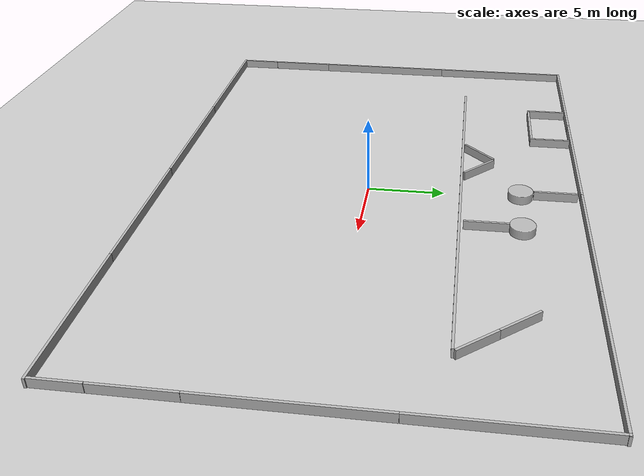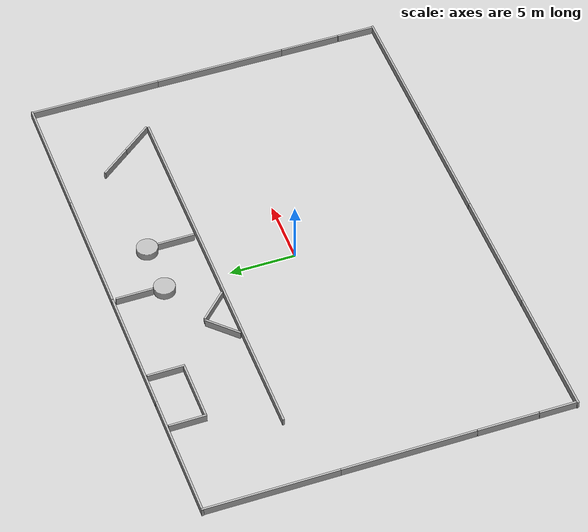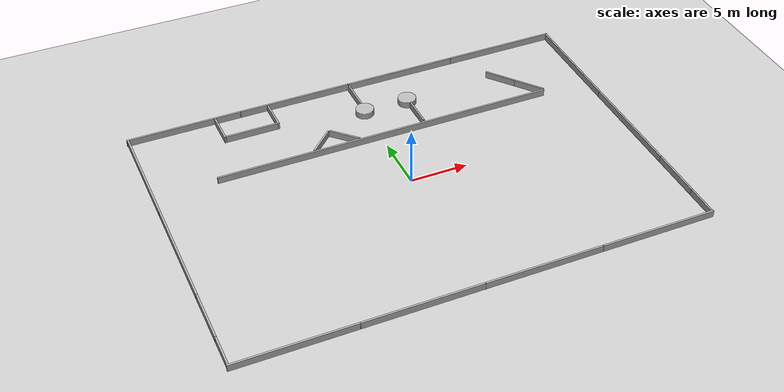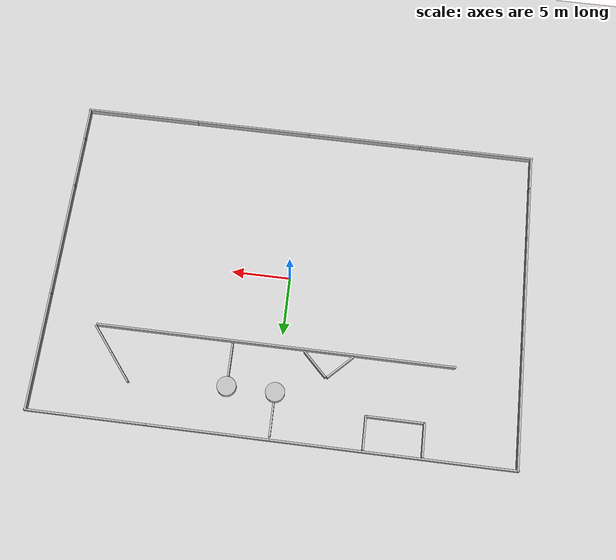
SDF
<sdf version="1.6">
 <world name="pp_playground">
  <scene>
   <shadows>0</shadows>
   <ambient>0.8 0.8 0.8 1</ambient>
   <background>1 1 1 1</background>
   <grid>0</grid>
   <origin_visual>0</origin_visual>
  </scene>
  <physics name="default_physics" default="0" type="ode">
   <max_step_size>0.001</max_step_size>
   <real_time_factor>1</real_time_factor>
   <real_time_update_rate>500</real_time_update_rate>
  </physics>
  <gravity>0 0 -9.8</gravity>
  <magnetic_field>6e-06 2.3e-05 -4.2e-05</magnetic_field>
  <atmosphere type="adiabatic"/>
  <audio><device>default</device></audio>
  <spherical_coordinates>
   <surface_model>EARTH_WGS84</surface_model>
   <latitude_deg>0</latitude_deg>
   <longitude_deg>0</longitude_deg>
   <elevation>0</elevation>
   <heading_deg>0</heading_deg>
  </spherical_coordinates>
  <model name="ground_plane">
   <static>1</static>
   <link name="link">
    <collision name="collision">
     <geometry><plane><normal>0 0 1</normal><size>50 50</size></plane></geometry>
     <surface><friction><ode><mu>100</mu><mu2>50</mu2></ode></friction></surface>
    </collision>
    <visual name="visual">
     <cast_shadows>0</cast_shadows>
     <geometry><plane><normal>0 0 1</normal><size>100 100</size></plane></geometry>
     <material>
      <script><name>Gazebo/Grey</name><uri>file://media/materials/scripts/gazebo.material</uri></script>
     </material>
    </visual>
    <velocity_decay><linear>0</linear><angular>0</angular></velocity_decay>
   </link>
  </model>
  <include><uri>model://path_planning_ground</uri></include>
 </world>
</sdf>

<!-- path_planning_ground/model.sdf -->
<sdf version="1.5">
 <model name='path_planning_ground'>
      <static>1</static>

      <link name='wall'>
        <pose frame=''>0.5 6.1 0 0 -0 0</pose>
        <collision name='wall_01'>
          <pose frame=''>-0 0 1.25 0 -0 0</pose>
          <geometry>
            <box>
              <size>30 0.15 0.6</size>
            </box>
          </geometry>
          <max_contacts>10</max_contacts>
          <surface>
            <contact>
              <ode/>
            </contact>
            <bounce/>
            <friction>
              <torsional>
                <ode/>
              </torsional>
              <ode/>
            </friction>
          </surface>
        </collision>

        <visual name='visual_wall'>
          <geometry>
            <mesh>
              <uri>model://path_planning_ground/meshes/concrete_barrier_30m.dae</uri>
            </mesh>
          </geometry>
        </visual>

        <self_collide>0</self_collide>
        <enable_wind>0</enable_wind>
        <kinematic>0</kinematic>
      </link>

      <link name='concrete_barrier_m_1'>
      <pose frame=''>14.689 7.315 0 0 -0 2.246</pose>
        <collision name='concrete_barrier_m_01'>
          <pose frame=''>-0 0 0.3 0 -0 0</pose>
          <geometry>
            <box>
              <size>2.8 0.15 0.6</size>
            </box>
          </geometry>
          <max_contacts>10</max_contacts>
          <surface>
            <contact>
              <ode/>
            </contact>
            <bounce/>
            <friction>
              <torsional>
                <ode/>
              </torsional>
              <ode/>
            </friction>
          </surface>
        </collision>
        <visual name='visual'>
          <geometry>
            <mesh>
              <uri>model://path_planning_ground/meshes/concrete_barrier_m.dae</uri>
            </mesh>
          </geometry>
        </visual>
        <self_collide>0</self_collide>
        <enable_wind>0</enable_wind>
        <kinematic>0</kinematic>
      </link>
      <link name='concrete_barrier_m_2'>
      <pose frame=''>12.94 9.5 0 0 -0 2.246</pose>
        <collision name='concrete_barrier_m_01'>
          <pose frame=''>-0 0 0.3 0 -0 0</pose>
          <geometry>
            <box>
              <size>2.8 0.15 0.6</size>
            </box>
          </geometry>
          <max_contacts>10</max_contacts>
          <surface>
            <contact>
              <ode/>
            </contact>
            <bounce/>
            <friction>
              <torsional>
                <ode/>
              </torsional>
              <ode/>
            </friction>
          </surface>
        </collision>
        <visual name='visual'>
          <geometry>
            <mesh>
              <uri>model://path_planning_ground/meshes/concrete_barrier_m.dae</uri>
            </mesh>
          </geometry>
        </visual>
        <self_collide>0</self_collide>
        <enable_wind>0</enable_wind>
        <kinematic>0</kinematic>
      </link>
      <link name='round_concrete_base_1'>
      <pose frame=''>4 9.95 0 0 -0 0</pose>
        <collision name='round_concrete_base_01'>
          <pose frame=''>-0 0 0.3 0 -0 0</pose>
          <geometry>
            <cylinder>
              <radius>0.8</radius>
              <length>0.6</length>
            </cylinder>
          </geometry>
          <max_contacts>10</max_contacts>
          <surface>
            <contact>
              <ode/>
            </contact>
            <bounce/>
            <friction>
              <torsional>
                <ode/>
              </torsional>
              <ode/>
            </friction>
          </surface>
        </collision>
        <visual name='visual'>
          <geometry>
            <mesh>
              <uri>model://path_planning_ground/meshes/round_concrete_base.dae</uri>
            </mesh>
          </geometry>
        </visual>
        <self_collide>0</self_collide>
        <enable_wind>0</enable_wind>
        <kinematic>0</kinematic>
      </link>
      <link name='concrete_barrier_m_3'>
      <pose frame=''>4 7.75 0 0 -0 1.57675</pose>
        <collision name='concrete_barrier_m_01'>
          <pose frame=''>-0 0 0.3 0 -0 0</pose>
          <geometry>
            <box>
              <size>2.8 0.15 0.6</size>
            </box>
          </geometry>
          <max_contacts>10</max_contacts>
          <surface>
            <contact>
              <ode/>
            </contact>
            <bounce/>
            <friction>
              <torsional>
                <ode/>
              </torsional>
              <ode/>
            </friction>
          </surface>
        </collision>
        <visual name='visual'>
          <geometry>
            <mesh>
              <uri>model://path_planning_ground/meshes/concrete_barrier_m.dae</uri>
            </mesh>
          </geometry>
        </visual>
        <self_collide>0</self_collide>
        <enable_wind>0</enable_wind>
        <kinematic>0</kinematic>
      </link>
      <link name='round_concrete_base_2'>
      <pose frame=''>0 9.95 0 0 -0 0</pose>
        <collision name='round_concrete_base_01'>
          <pose frame=''>-0 0 0.3 0 -0 0</pose>
          <geometry>
            <cylinder>
              <radius>0.8</radius>
              <length>0.6</length>
            </cylinder>
          </geometry>
          <max_contacts>10</max_contacts>
          <surface>
            <contact>
              <ode/>
            </contact>
            <bounce/>
            <friction>
              <torsional>
                <ode/>
              </torsional>
              <ode/>
            </friction>
          </surface>
        </collision>
        <visual name='visual'>
          <geometry>
            <mesh>
              <uri>model://path_planning_ground/meshes/round_concrete_base.dae</uri>
            </mesh>
          </geometry>
        </visual>
        <self_collide>0</self_collide>
        <enable_wind>0</enable_wind>
        <kinematic>0</kinematic>
      </link>
      <link name='concrete_barrier_m_4'>
      <pose frame=''>0 12.2 0 0 -0 1.57675</pose>
        <collision name='concrete_barrier_m_01'>
          <pose frame=''>-0 0 0.3 0 -0 0</pose>
          <geometry>
            <box>
              <size>2.8 0.15 0.6</size>
            </box>
          </geometry>
          <max_contacts>10</max_contacts>
          <surface>
            <contact>
              <ode/>
            </contact>
            <bounce/>
            <friction>
              <torsional>
                <ode/>
              </torsional>
              <ode/>
            </friction>
          </surface>
        </collision>
        <visual name='visual'>
          <geometry>
            <mesh>
              <uri>model://path_planning_ground/meshes/concrete_barrier_m.dae</uri>
            </mesh>
          </geometry>
        </visual>
        <self_collide>0</self_collide>
        <enable_wind>0</enable_wind>
        <kinematic>0</kinematic>
      </link>
      <link name='concrete_barrier_m_5'>
      <pose frame=''>-7.54 12.325 0 0 -0 1.57675</pose>
        <collision name='concrete_barrier_m_01'>
          <pose frame=''>-0 0 0.3 0 -0 0</pose>
          <geometry>
            <box>
              <size>2.8 0.15 0.6</size>
            </box>
          </geometry>
          <max_contacts>10</max_contacts>
          <surface>
            <contact>
              <ode/>
            </contact>
            <bounce/>
            <friction>
              <torsional>
                <ode/>
              </torsional>
              <ode/>
            </friction>
          </surface>
        </collision>
        <visual name='visual'>
          <geometry>
            <mesh>
              <uri>model://path_planning_ground/meshes/concrete_barrier_m.dae</uri>
            </mesh>
          </geometry>
        </visual>
        <self_collide>0</self_collide>
        <enable_wind>0</enable_wind>
        <kinematic>0</kinematic>
      </link>
      <link name='concrete_barrier_l_7'>
        <pose frame=''>-9.91 11 0 0 -0 0</pose>
        <collision name='concrete_barrier_l_01'>
          <pose frame=''>-0 0 0.3 0 -0 0</pose>
          <geometry>
            <box>
              <size>4.6 0.15 0.6</size>
            </box>
          </geometry>
          <max_contacts>10</max_contacts>
          <surface>
            <contact>
              <ode/>
            </contact>
            <bounce/>
            <friction>
              <torsional>
                <ode/>
              </torsional>
              <ode/>
            </friction>
          </surface>
        </collision>
        <visual name='visual'>
          <geometry>
            <mesh>
              <uri>model://path_planning_ground/meshes/concrete_barrier_l.dae</uri>
            </mesh>
          </geometry>
        </visual>
        <self_collide>0</self_collide>
        <enable_wind>0</enable_wind>
        <kinematic>0</kinematic>
      </link>
      <link name='concrete_barrier_m_6'>
      <pose frame=''>-12.3 12.325 0 0 -0 1.57675</pose>
        <collision name='concrete_barrier_m_01'>
          <pose frame=''>-0 0 0.3 0 -0 0</pose>
          <geometry>
            <box>
              <size>2.8 0.15 0.6</size>
            </box>
          </geometry>
          <max_contacts>10</max_contacts>
          <surface>
            <contact>
              <ode/>
            </contact>
            <bounce/>
            <friction>
              <torsional>
                <ode/>
              </torsional>
              <ode/>
            </friction>
          </surface>
        </collision>
        <visual name='visual'>
          <geometry>
            <mesh>
              <uri>model://path_planning_ground/meshes/concrete_barrier_m.dae</uri>
            </mesh>
          </geometry>
        </visual>
        <self_collide>0</self_collide>
        <enable_wind>0</enable_wind>
        <kinematic>0</kinematic>
      </link>
      <link name='concrete_barrier_m_7'>
      <pose frame=''>-2.95 7.25 0 0 0 -0.7854</pose>
        <collision name='concrete_barrier_m_01'>
          <pose frame=''>-0 0 0.3 0 -0 0</pose>
          <geometry>
            <box>
              <size>2.8 0.15 0.6</size>
            </box>
          </geometry>
          <max_contacts>10</max_contacts>
          <surface>
            <contact>
              <ode/>
            </contact>
            <bounce/>
            <friction>
              <torsional>
                <ode/>
              </torsional>
              <ode/>
            </friction>
          </surface>
        </collision>
        <visual name='visual'>
          <geometry>
            <mesh>
              <uri>model://path_planning_ground/meshes/concrete_barrier_m.dae</uri>
            </mesh>
          </geometry>
        </visual>
        <self_collide>0</self_collide>
        <enable_wind>0</enable_wind>
        <kinematic>0</kinematic>
      </link>
      <link name='concrete_barrier_m_8'>
      <pose frame=''>-5.05 7.25 0 0 -0 0.7854</pose>
        <collision name='concrete_barrier_m_01'>
          <pose frame=''>-0 0 0.3 0 -0 0</pose>
          <geometry>
            <box>
              <size>2.8 0.15 0.6</size>
            </box>
          </geometry>
          <max_contacts>10</max_contacts>
          <surface>
            <contact>
              <ode/>
            </contact>
            <bounce/>
            <friction>
              <torsional>
                <ode/>
              </torsional>
              <ode/>
            </friction>
          </surface>
        </collision>
        <visual name='visual'>
          <geometry>
            <mesh>
              <uri>model://path_planning_ground/meshes/concrete_barrier_m.dae</uri>
            </mesh>
          </geometry>
        </visual>
        <self_collide>0</self_collide>
        <enable_wind>0</enable_wind>
        <kinematic>0</kinematic>
      </link>

    <!-- side -->
    <link name='concrete_barrier_xl_1'>
       <pose>19.9 8.92 0.0 0 0 1.5708</pose>
        <collision name='concrete_barrier_xl_01'>
          <pose frame=''>-0 0 0.3 0 -0 0</pose>
          <geometry>
            <box>
              <size>10 0.15 0.6</size>
            </box>
          </geometry>
          <max_contacts>10</max_contacts>
          <surface>
            <contact>
              <ode/>
            </contact>
            <bounce/>
            <friction>
              <torsional>
                <ode/>
              </torsional>
              <ode/>
            </friction>
          </surface>
        </collision>
        <visual name='visual'>
          <geometry>
            <mesh>
              <uri>model://path_planning_ground/meshes/concrete_barrier_xl.dae</uri>
            </mesh>
          </geometry>
        </visual>
        <self_collide>0</self_collide>
        <enable_wind>0</enable_wind>
        <kinematic>0</kinematic>
      </link>

     <link name='concrete_barrier_xl_2'>
       <pose>19.9 -1.09 0.0 0 0 1.5708</pose>
        <collision name='concrete_barrier_xl_02'>
          <pose frame=''>-0 0 0.3 0 -0 0</pose>
          <geometry>
            <box>
              <size>10 0.15 0.6</size>
            </box>
          </geometry>
          <max_contacts>10</max_contacts>
          <surface>
            <contact>
              <ode/>
            </contact>
            <bounce/>
            <friction>
              <torsional>
                <ode/>
              </torsional>
              <ode/>
            </friction>
          </surface>
        </collision>
        <visual name='visual'>
          <geometry>
            <mesh>
              <uri>model://path_planning_ground/meshes/concrete_barrier_xl.dae</uri>
            </mesh>
          </geometry>
        </visual>
        <self_collide>0</self_collide>
        <enable_wind>0</enable_wind>
        <kinematic>0</kinematic>
      </link>

    <link name='concrete_barrier_l_10'>
       <pose>19.9 -8.4 0.0 0 0 1.5708</pose>
        <collision name='concrete_barrier_l_10'>
          <pose frame=''>-0 0 0.3 0 -0 0</pose>
          <geometry>
            <box>
              <size>4.6 0.15 0.6</size>
            </box>
          </geometry>
          <max_contacts>10</max_contacts>
          <surface>
            <contact>
              <ode/>
            </contact>
            <bounce/>
            <friction>
              <torsional>
                <ode/>
              </torsional>
              <ode/>
            </friction>
          </surface>
        </collision>
        <visual name='visual'>
          <geometry>
            <mesh>
              <uri>model://path_planning_ground/meshes/concrete_barrier_l.dae</uri>
            </mesh>
          </geometry>
        </visual>
        <self_collide>0</self_collide>
        <enable_wind>0</enable_wind>
        <kinematic>0</kinematic>
      </link>

    <link name='concrete_barrier_m_9'>
      <pose>19.9 -12.12 0.0 0 0 1.5708</pose>se>
        <collision name='concrete_barrier_m_09'>
          <pose frame=''>-0 0 0.3 0 -0 0</pose>
          <geometry>
            <box>
              <size>2.8 0.15 0.6</size>
            </box>
          </geometry>
          <max_contacts>10</max_contacts>
          <surface>
            <contact>
              <ode/>
            </contact>
            <bounce/>
            <friction>
              <torsional>
                <ode/>
              </torsional>
              <ode/>
            </friction>
          </surface>
        </collision>
        <visual name='visual'>
          <geometry>
            <mesh>
              <uri>model://path_planning_ground/meshes/concrete_barrier_m.dae</uri>
            </mesh>
          </geometry>
        </visual>
        <self_collide>0</self_collide>
        <enable_wind>0</enable_wind>
        <kinematic>0</kinematic>
      </link>

    <!-- side -->
    <link name='concrete_barrier_xl_3'>
      <pose>-19.9 8.92 0.0 0 0 1.5708</pose>
        <collision name='concrete_barrier_xl_03'>
          <pose frame=''>-0 0 0.3 0 -0 0</pose>
          <geometry>
            <box>
              <size>10 0.15 0.6</size>
            </box>
          </geometry>
          <max_contacts>10</max_contacts>
          <surface>
            <contact>
              <ode/>
            </contact>
            <bounce/>
            <friction>
              <torsional>
                <ode/>
              </torsional>
              <ode/>
            </friction>
          </surface>
        </collision>
        <visual name='visual'>
          <geometry>
            <mesh>
              <uri>model://path_planning_ground/meshes/concrete_barrier_xl.dae</uri>
            </mesh>
          </geometry>
        </visual>
        <self_collide>0</self_collide>
        <enable_wind>0</enable_wind>
        <kinematic>0</kinematic>
      </link>

     <link name='concrete_barrier_xl_4'>
       <pose>-19.9 -1.09 0.0 0 0 1.5708</pose>
        <collision name='concrete_barrier_xl_04'>
          <pose frame=''>-0 0 0.3 0 -0 0</pose>
          <geometry>
            <box>
              <size>10 0.15 0.6</size>
            </box>
          </geometry>
          <max_contacts>10</max_contacts>
          <surface>
            <contact>
              <ode/>
            </contact>
            <bounce/>
            <friction>
              <torsional>
                <ode/>
              </torsional>
              <ode/>
            </friction>
          </surface>
        </collision>
        <visual name='visual'>
          <geometry>
            <mesh>
              <uri>model://path_planning_ground/meshes/concrete_barrier_xl.dae</uri>
            </mesh>
          </geometry>
        </visual>
        <self_collide>0</self_collide>
        <enable_wind>0</enable_wind>
        <kinematic>0</kinematic>
      </link>

    <link name='concrete_barrier_l_11'>
       <pose>-19.9 -8.4 0.0 0 0 1.5708</pose>
        <collision name='concrete_barrier_l_11'>
          <pose frame=''>-0 0 0.3 0 -0 0</pose>
          <geometry>
            <box>
              <size>4.6 0.15 0.6</size>
            </box>
          </geometry>
          <max_contacts>10</max_contacts>
          <surface>
            <contact>
              <ode/>
            </contact>
            <bounce/>
            <friction>
              <torsional>
                <ode/>
              </torsional>
              <ode/>
            </friction>
          </surface>
        </collision>
        <visual name='visual'>
          <geometry>
            <mesh>
              <uri>model://path_planning_ground/meshes/concrete_barrier_l.dae</uri>
            </mesh>
          </geometry>
        </visual>
        <self_collide>0</self_collide>
        <enable_wind>0</enable_wind>
        <kinematic>0</kinematic>
      </link>

    <link name='concrete_barrier_m_10'>
      <pose>-19.9 -12.12 0.0 0 0 1.5708</pose>se>
        <collision name='concrete_barrier_m_10'>
          <pose frame=''>-0 0 0.3 0 -0 0</pose>
          <geometry>
            <box>
              <size>2.8 0.15 0.6</size>
            </box>
          </geometry>
          <max_contacts>10</max_contacts>
          <surface>
            <contact>
              <ode/>
            </contact>
            <bounce/>
            <friction>
              <torsional>
                <ode/>
              </torsional>
              <ode/>
            </friction>
          </surface>
        </collision>
        <visual name='visual'>
          <geometry>
            <mesh>
              <uri>model://path_planning_ground/meshes/concrete_barrier_m.dae</uri>
            </mesh>
          </geometry>
        </visual>
        <self_collide>0</self_collide>
        <enable_wind>0</enable_wind>
        <kinematic>0</kinematic>
      </link>

    <!-- side -->
     <link name='concrete_barrier_xl_5'>
       <pose>15.02 -13.6 0.0 0 0 0</pose>
        <collision name='concrete_barrier_xl_05'>
          <pose frame=''>-0 0 0.3 0 -0 0</pose>
          <geometry>
            <box>
              <size>10 0.15 0.6</size>
            </box>
          </geometry>
          <max_contacts>10</max_contacts>
          <surface>
            <contact>
              <ode/>
            </contact>
            <bounce/>
            <friction>
              <torsional>
                <ode/>
              </torsional>
              <ode/>
            </friction>
          </surface>
        </collision>
        <visual name='visual'>
          <geometry>
            <mesh>
              <uri>model://path_planning_ground/meshes/concrete_barrier_xl.dae</uri>
            </mesh>
          </geometry>
        </visual>
        <self_collide>0</self_collide>
        <enable_wind>0</enable_wind>
        <kinematic>0</kinematic>
      </link>

     <link name='concrete_barrier_xl_6'>
       <pose>5.01 -13.6 0.0 0 0 0</pose>
        <collision name='concrete_barrier_xl_06'>
          <pose frame=''>-0 0 0.3 0 -0 0</pose>
          <geometry>
            <box>
              <size>10 0.15 0.6</size>
            </box>
          </geometry>
          <max_contacts>10</max_contacts>
          <surface>
            <contact>
              <ode/>
            </contact>
            <bounce/>
            <friction>
              <torsional>
                <ode/>
              </torsional>
              <ode/>
            </friction>
          </surface>
        </collision>
        <visual name='visual'>
          <geometry>
            <mesh>
              <uri>model://path_planning_ground/meshes/concrete_barrier_xl.dae</uri>
            </mesh>
          </geometry>
        </visual>
        <self_collide>0</self_collide>
        <enable_wind>0</enable_wind>
        <kinematic>0</kinematic>
      </link>

    <link name='concrete_barrier_xl_7'>
       <pose>-5.01 -13.6 0.0 0 0 0</pose>
        <collision name='concrete_barrier_xl_07'>
          <pose frame=''>-0 0 0.3 0 -0 0</pose>
          <geometry>
            <box>
              <size>10 0.15 0.6</size>
            </box>
          </geometry>
          <max_contacts>10</max_contacts>
          <surface>
            <contact>
              <ode/>
            </contact>
            <bounce/>
            <friction>
              <torsional>
                <ode/>
              </torsional>
              <ode/>
            </friction>
          </surface>
        </collision>
        <visual name='visual'>
          <geometry>
            <mesh>
              <uri>model://path_planning_ground/meshes/concrete_barrier_xl.dae</uri>
            </mesh>
          </geometry>
        </visual>
        <self_collide>0</self_collide>
        <enable_wind>0</enable_wind>
        <kinematic>0</kinematic>
      </link>

    <link name='concrete_barrier_xl_8'>
       <pose>-15.02 -13.6 0.0 0 0 0</pose>
        <collision name='concrete_barrier_xl_08'>
          <pose frame=''>-0 0 0.3 0 -0 0</pose>
          <geometry>
            <box>
              <size>10 0.15 0.6</size>
            </box>
          </geometry>
          <max_contacts>10</max_contacts>
          <surface>
            <contact>
              <ode/>
            </contact>
            <bounce/>
            <friction>
              <torsional>
                <ode/>
              </torsional>
              <ode/>
            </friction>
          </surface>
        </collision>
        <visual name='visual'>
          <geometry>
            <mesh>
              <uri>model://path_planning_ground/meshes/concrete_barrier_xl.dae</uri>
            </mesh>
          </geometry>
        </visual>
        <self_collide>0</self_collide>
        <enable_wind>0</enable_wind>
        <kinematic>0</kinematic>
      </link>

  <!-- side -->
     <link name='concrete_barrier_xl_09'>
       <pose>15.02 13.85 0.0 0 0 0</pose>
        <collision name='concrete_barrier_xl_09'>
          <pose frame=''>-0 0 0.3 0 -0 0</pose>
          <geometry>
            <box>
              <size>10 0.15 0.6</size>
            </box>
          </geometry>
          <max_contacts>10</max_contacts>
          <surface>
            <contact>
              <ode/>
            </contact>
            <bounce/>
            <friction>
              <torsional>
                <ode/>
              </torsional>
              <ode/>
            </friction>
          </surface>
        </collision>
        <visual name='visual'>
          <geometry>
            <mesh>
              <uri>model://path_planning_ground/meshes/concrete_barrier_xl.dae</uri>
            </mesh>
          </geometry>
        </visual>
        <self_collide>0</self_collide>
        <enable_wind>0</enable_wind>
        <kinematic>0</kinematic>
      </link>

     <link name='concrete_barrier_xl_10'>
       <pose>5.01 13.85 0.0 0 0 0</pose>
        <collision name='concrete_barrier_xl_10'>
          <pose frame=''>-0 0 0.3 0 -0 0</pose>
          <geometry>
            <box>
              <size>10 0.15 0.6</size>
            </box>
          </geometry>
          <max_contacts>10</max_contacts>
          <surface>
            <contact>
              <ode/>
            </contact>
            <bounce/>
            <friction>
              <torsional>
                <ode/>
              </torsional>
              <ode/>
            </friction>
          </surface>
        </collision>
        <visual name='visual'>
          <geometry>
            <mesh>
              <uri>model://path_planning_ground/meshes/concrete_barrier_xl.dae</uri>
            </mesh>
          </geometry>
        </visual>
        <self_collide>0</self_collide>
        <enable_wind>0</enable_wind>
        <kinematic>0</kinematic>
      </link>

    <link name='concrete_barrier_xl_11'>
       <pose>-5.01 13.85 0.0 0 0 0</pose>
        <collision name='concrete_barrier_xl_11'>
          <pose frame=''>-0 0 0.3 0 -0 0</pose>
          <geometry>
            <box>
              <size>10 0.15 0.6</size>
            </box>
          </geometry>
          <max_contacts>10</max_contacts>
          <surface>
            <contact>
              <ode/>
            </contact>
            <bounce/>
            <friction>
              <torsional>
                <ode/>
              </torsional>
              <ode/>
            </friction>
          </surface>
        </collision>
        <visual name='visual'>
          <geometry>
            <mesh>
              <uri>model://path_planning_ground/meshes/concrete_barrier_xl.dae</uri>
            </mesh>
          </geometry>
        </visual>
        <self_collide>0</self_collide>
        <enable_wind>0</enable_wind>
        <kinematic>0</kinematic>
      </link>

    <link name='concrete_barrier_xl_12'>
       <pose>-15.02 13.85 0.0 0 0 0</pose>
        <collision name='concrete_barrier_xl_12'>
          <pose frame=''>-0 0 0.3 0 -0 0</pose>
          <geometry>
            <box>
              <size>10 0.15 0.6</size>
            </box>
          </geometry>
          <max_contacts>10</max_contacts>
          <surface>
            <contact>
              <ode/>
            </contact>
            <bounce/>
            <friction>
              <torsional>
                <ode/>
              </torsional>
              <ode/>
            </friction>
          </surface>
        </collision>
        <visual name='visual'>
          <geometry>
            <mesh>
              <uri>model://path_planning_ground/meshes/concrete_barrier_xl.dae</uri>
            </mesh>
          </geometry>
        </visual>
        <self_collide>0</self_collide>
        <enable_wind>0</enable_wind>
        <kinematic>0</kinematic>
      </link>

      </model>
</sdf>
